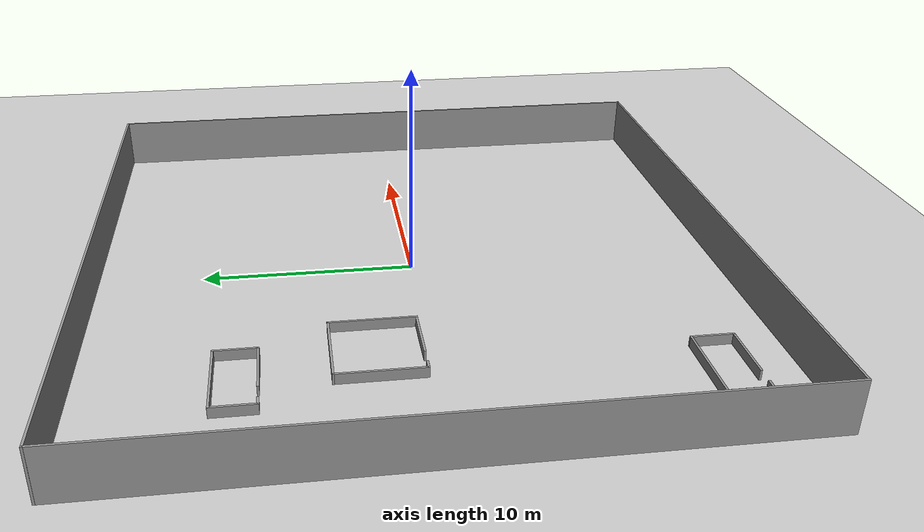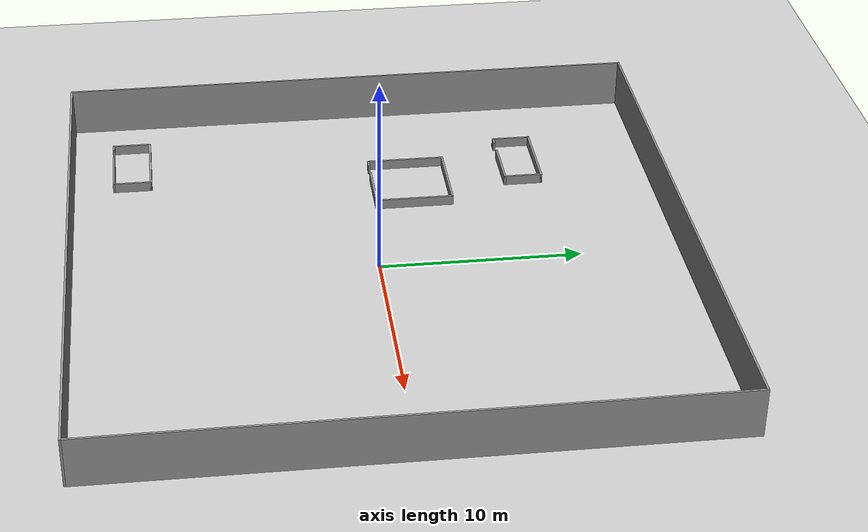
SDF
<sdf version="1.6">
 <world name="default">
  <model name="ground_plane">
   <static>1</static>
   <link name="link">
    <collision name="collision">
     <geometry><plane><normal>0 0 1</normal><size>30 30</size></plane></geometry>
     <surface>
      <contact><collide_bitmask>65535</collide_bitmask></contact>
      <friction><ode><mu>100</mu><mu2>50</mu2></ode></friction>
     </surface>
     <max_contacts>15</max_contacts>
    </collision>
    <visual name="visual">
     <cast_shadows>0</cast_shadows>
     <geometry><plane><normal>0 0 1</normal><size>30 30</size></plane></geometry>
     <material>
      <script><uri>file://media/materials/scripts/gazebo.material</uri><name>Gazebo/Grey</name></script>
     </material>
    </visual>
   </link>
  </model>
  <model name="outsidewall.sdf">
   <link name="Wall_3">
    <collision name="Wall_3_Collision">
     <geometry><box><size>30 0.10 2.5</size></box></geometry>
     <pose>0 0 1.25 0 -0 0</pose>
    </collision>
    <visual name="Wall_3_Visual">
     <pose>0 0 1.25 0 -0 0</pose>
     <geometry><box><size>30 0.10 2.5</size></box></geometry>
     <material>
      <script><uri>file://media/materials/scripts/gazebo.material</uri><name>Gazebo/Grey</name></script>
      <ambient>1 1 1 1</ambient>
     </material>
     <meta><layer>0</layer></meta>
    </visual>
    <pose>0 14.95 0 0 -0 0</pose>
   </link>
   <link name="Wall_5">
    <collision name="Wall_5_Collision">
     <geometry><box><size>30 0.10 2.5</size></box></geometry>
     <pose>0 0 1.25 0 -0 0</pose>
    </collision>
    <visual name="Wall_5_Visual">
     <pose>0 0 1.25 0 -0 0</pose>
     <geometry><box><size>30 0.10 2.5</size></box></geometry>
     <material>
      <script><uri>file://media/materials/scripts/gazebo.material</uri><name>Gazebo/Grey</name></script>
      <ambient>1 1 1 1</ambient>
     </material>
     <meta><layer>0</layer></meta>
    </visual>
    <pose>-14.95 0 0 0 -0 1.5707</pose>
   </link>
   <link name="Wall_6">
    <collision name="Wall_6_Collision">
     <geometry><box><size>30 0.10 2.5</size></box></geometry>
     <pose>0 0 1.25 0 -0 0</pose>
    </collision>
    <visual name="Wall_6_Visual">
     <pose>0 0 1.25 0 -0 0</pose>
     <geometry><box><size>30 0.10 2.5</size></box></geometry>
     <material>
      <script><uri>file://media/materials/scripts/gazebo.material</uri><name>Gazebo/Grey</name></script>
      <ambient>1 1 1 1</ambient>
     </material>
     <meta><layer>0</layer></meta>
    </visual>
    <pose>0 -14.95 0 0 -0 0</pose>
   </link>
   <link name="Wall_7">
    <collision name="Wall_7_Collision">
     <geometry><box><size>30 0.10 2.5</size></box></geometry>
     <pose>0 0 1.25 0 -0 0</pose>
    </collision>
    <visual name="Wall_7_Visual">
     <pose>0 0 1.25 0 -0 0</pose>
     <geometry><box><size>30 0.10 2.5</size></box></geometry>
     <material>
      <script><uri>file://media/materials/scripts/gazebo.material</uri><name>Gazebo/Grey</name></script>
      <ambient>1 1 1 1</ambient>
     </material>
     <meta><layer>0</layer></meta>
    </visual>
    <pose>14.95 0 0 0 -0 1.5707</pose>
   </link>
   <static>1</static>
  </model>
  <model name="shape6">
   <pose>-7.3 2.4 0 0 -0 0</pose>
   <link name="Wall_27">
    <collision name="Wall_27_Collision">
     <geometry><box><size>4 0.1 0.5</size></box></geometry>
     <pose>0 0 0.25 0 -0 0</pose>
    </collision>
    <visual name="Wall_27_Visual">
     <pose>0 0 0.25 0 -0 0</pose>
     <geometry><box><size>4 0.1 0.5</size></box></geometry>
     <material>
      <script><uri>file://media/materials/scripts/gazebo.material</uri><name>Gazebo/Grey</name></script>
      <ambient>1 1 1 1</ambient>
     </material>
     <meta><layer>0</layer></meta>
    </visual>
    <pose>0 1.95 0 0 -0 0</pose>
   </link>
   <link name="Wall_28">
    <collision name="Wall_28_Collision">
     <geometry><box><size>4 0.1 0.5</size></box></geometry>
     <pose>0 0 0.25 0 -0 0</pose>
    </collision>
    <visual name="Wall_28_Visual">
     <pose>0 0 0.25 0 -0 0</pose>
     <geometry><box><size>4 0.1 0.5</size></box></geometry>
     <material>
      <script><uri>file://media/materials/scripts/gazebo.material</uri><name>Gazebo/Grey</name></script>
      <ambient>1 1 1 1</ambient>
     </material>
     <meta><layer>0</layer></meta>
    </visual>
    <pose>1.95 -0 0 0 -0 -1.5708</pose>
   </link>
   <link name="Wall_29">
    <collision name="Wall_29_Collision">
     <geometry><box><size>2.8 0.1 0.5</size></box></geometry>
     <pose>0 0 0.25 0 -0 0</pose>
    </collision>
    <visual name="Wall_29_Visual">
     <pose>0 0 0.25 0 -0 0</pose>
     <geometry><box><size>2.8 0.1 0.5</size></box></geometry>
     <material>
      <script><uri>file://media/materials/scripts/gazebo.material</uri><name>Gazebo/Grey</name></script>
      <ambient>1 1 1 1</ambient>
     </material>
     <meta><layer>0</layer></meta>
    </visual>
    <pose>0.6 -1.95 0 0 -0 3.14159</pose>
   </link>
   <link name="Wall_31">
    <collision name="Wall_31_Collision">
     <geometry><box><size>4 0.1 0.5</size></box></geometry>
     <pose>0 0 0.25 0 -0 0</pose>
    </collision>
    <visual name="Wall_31_Visual">
     <pose>0 0 0.25 0 -0 0</pose>
     <geometry><box><size>4 0.1 0.5</size></box></geometry>
     <material>
      <script><uri>file://media/materials/scripts/gazebo.material</uri><name>Gazebo/Grey</name></script>
      <ambient>1 1 1 1</ambient>
     </material>
     <meta><layer>0</layer></meta>
    </visual>
    <pose>-1.95 -0 0 0 -0 -1.5708</pose>
   </link>
   <link name="Wall_32">
    <collision name="Wall_32_Collision">
     <geometry><box><size>0.5 0.1 0.5</size></box></geometry>
     <pose>0 0 0.25 0 -0 0</pose>
    </collision>
    <visual name="Wall_32_Visual">
     <pose>0 0 0.25 0 -0 0</pose>
     <geometry><box><size>0.5 0.1 0.5</size></box></geometry>
     <material>
      <script><uri>file://media/materials/scripts/gazebo.material</uri><name>Gazebo/Grey</name></script>
      <ambient>1 1 1 1</ambient>
     </material>
     <meta><layer>0</layer></meta>
    </visual>
    <pose>-1.75 -1.95 0 0 -0 0</pose>
   </link>
   <static>1</static>
  </model>
  <model name="shape2">
   <pose>-8.9 8.3 0 0 -0 0</pose>
   <link name="Wall_0">
    <collision name="Wall_0_Collision">
     <geometry><box><size>3.98685 0.1 0.5</size></box></geometry>
     <pose>0 0 0.25 0 -0 0</pose>
    </collision>
    <visual name="Wall_0_Visual">
     <pose>0 0 0.25 0 -0 0</pose>
     <geometry><box><size>3.98685 0.1 0.5</size></box></geometry>
     <material>
      <script><uri>file://media/materials/scripts/gazebo.material</uri><name>Gazebo/Grey</name></script>
      <ambient>1 1 1 1</ambient>
     </material>
     <meta><layer>0</layer></meta>
    </visual>
    <pose>0.003288 0.95 0 0 -0 0</pose>
   </link>
   <link name="Wall_1">
    <collision name="Wall_1_Collision">
     <geometry><box><size>2 0.1 0.5</size></box></geometry>
     <pose>0 0 0.25 0 -0 0</pose>
    </collision>
    <visual name="Wall_1_Visual">
     <pose>0 0 0.25 0 -0 0</pose>
     <geometry><box><size>2 0.1 0.5</size></box></geometry>
     <material>
      <script><uri>file://media/materials/scripts/gazebo.material</uri><name>Gazebo/Grey</name></script>
      <ambient>1 1 1 1</ambient>
     </material>
     <meta><layer>0</layer></meta>
    </visual>
    <pose>1.94671 0 0 0 -0 -1.5708</pose>
   </link>
   <link name="Wall_2">
    <collision name="Wall_2_Collision">
     <geometry><box><size>2.8 0.1 0.5</size></box></geometry>
     <pose>0 0 0.25 0 -0 0</pose>
    </collision>
    <visual name="Wall_2_Visual">
     <pose>0 0 0.25 0 -0 0</pose>
     <geometry><box><size>2.8 0.1 0.5</size></box></geometry>
     <material>
      <script><uri>file://media/materials/scripts/gazebo.material</uri><name>Gazebo/Grey</name></script>
      <ambient>1 1 1 1</ambient>
     </material>
     <meta><layer>0</layer></meta>
    </visual>
    <pose>0.596712 -0.95 0 0 -0 3.14159</pose>
   </link>
   <link name="Wall_4">
    <collision name="Wall_4_Collision">
     <geometry><box><size>2 0.1 0.5</size></box></geometry>
     <pose>0 0 0.25 0 -0 0</pose>
    </collision>
    <visual name="Wall_4_Visual">
     <pose>0 0 0.25 0 -0 0</pose>
     <geometry><box><size>2 0.1 0.5</size></box></geometry>
     <material>
      <script><uri>file://media/materials/scripts/gazebo.material</uri><name>Gazebo/Grey</name></script>
      <ambient>1 1 1 1</ambient>
     </material>
     <meta><layer>0</layer></meta>
    </visual>
    <pose>-1.94671 0 0 0 -0 -1.5708</pose>
   </link>
   <link name="Wall_5">
    <collision name="Wall_5_Collision">
     <geometry><box><size>0.5 0.1 0.5</size></box></geometry>
     <pose>0 0 0.25 0 -0 0</pose>
    </collision>
    <visual name="Wall_5_Visual">
     <pose>0 0 0.25 0 -0 0</pose>
     <geometry><box><size>0.5 0.1 0.5</size></box></geometry>
     <material>
      <script><uri>file://media/materials/scripts/gazebo.material</uri><name>Gazebo/Grey</name></script>
      <ambient>1 1 1 1</ambient>
     </material>
     <meta><layer>0</layer></meta>
    </visual>
    <pose>-1.74671 -0.95 0 0 -0 0</pose>
   </link>
   <static>1</static>
  </model>
  <model name="shape2">
   <pose>-10.4 -11.9 0 0 -0 0</pose>
   <link name="Wall_0">
    <collision name="Wall_0_Collision">
     <geometry><box><size>3.98685 0.1 0.5</size></box></geometry>
     <pose>0 0 0.25 0 -0 0</pose>
    </collision>
    <visual name="Wall_0_Visual">
     <pose>0 0 0.25 0 -0 0</pose>
     <geometry><box><size>3.98685 0.1 0.5</size></box></geometry>
     <material>
      <script><uri>file://media/materials/scripts/gazebo.material</uri><name>Gazebo/Grey</name></script>
      <ambient>1 1 1 1</ambient>
     </material>
     <meta><layer>0</layer></meta>
    </visual>
    <pose>0.003288 0.95 0 0 -0 0</pose>
   </link>
   <link name="Wall_1">
    <collision name="Wall_1_Collision">
     <geometry><box><size>2 0.1 0.5</size></box></geometry>
     <pose>0 0 0.25 0 -0 0</pose>
    </collision>
    <visual name="Wall_1_Visual">
     <pose>0 0 0.25 0 -0 0</pose>
     <geometry><box><size>2 0.1 0.5</size></box></geometry>
     <material>
      <script><uri>file://media/materials/scripts/gazebo.material</uri><name>Gazebo/Grey</name></script>
      <ambient>1 1 1 1</ambient>
     </material>
     <meta><layer>0</layer></meta>
    </visual>
    <pose>1.94671 0 0 0 -0 -1.5708</pose>
   </link>
   <link name="Wall_2">
    <collision name="Wall_2_Collision">
     <geometry><box><size>2.8 0.1 0.5</size></box></geometry>
     <pose>0 0 0.25 0 -0 0</pose>
    </collision>
    <visual name="Wall_2_Visual">
     <pose>0 0 0.25 0 -0 0</pose>
     <geometry><box><size>2.8 0.1 0.5</size></box></geometry>
     <material>
      <script><uri>file://media/materials/scripts/gazebo.material</uri><name>Gazebo/Grey</name></script>
      <ambient>1 1 1 1</ambient>
     </material>
     <meta><layer>0</layer></meta>
    </visual>
    <pose>0.596712 -0.95 0 0 -0 3.14159</pose>
   </link>
   <link name="Wall_4">
    <collision name="Wall_4_Collision">
     <geometry><box><size>2 0.1 0.5</size></box></geometry>
     <pose>0 0 0.25 0 -0 0</pose>
    </collision>
    <visual name="Wall_4_Visual">
     <pose>0 0 0.25 0 -0 0</pose>
     <geometry><box><size>2 0.1 0.5</size></box></geometry>
     <material>
      <script><uri>file://media/materials/scripts/gazebo.material</uri><name>Gazebo/Grey</name></script>
      <ambient>1 1 1 1</ambient>
     </material>
     <meta><layer>0</layer></meta>
    </visual>
    <pose>-1.94671 0 0 0 -0 -1.5708</pose>
   </link>
   <link name="Wall_5">
    <collision name="Wall_5_Collision">
     <geometry><box><size>0.5 0.1 0.5</size></box></geometry>
     <pose>0 0 0.25 0 -0 0</pose>
    </collision>
    <visual name="Wall_5_Visual">
     <pose>0 0 0.25 0 -0 0</pose>
     <geometry><box><size>0.5 0.1 0.5</size></box></geometry>
     <material>
      <script><uri>file://media/materials/scripts/gazebo.material</uri><name>Gazebo/Grey</name></script>
      <ambient>1 1 1 1</ambient>
     </material>
     <meta><layer>0</layer></meta>
    </visual>
    <pose>-1.74671 -0.95 0 0 -0 0</pose>
   </link>
   <static>1</static>
  </model>
 </world>
</sdf>
